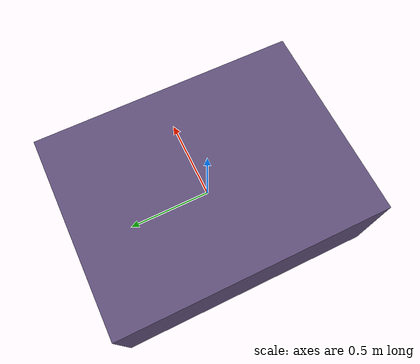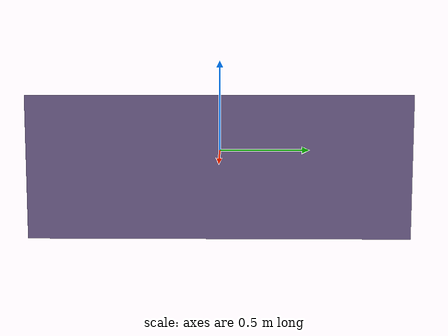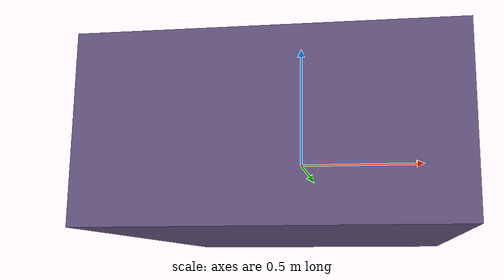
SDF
<?xml version="1.0"?>
<sdf version="1.9">
  <model name="recovery_blocker">
    <static>true</static>
    <link name="blocker_link">
      <collision name="blocker_collision">
        <geometry>
          <box>
            <size>1.20 1.60 0.60</size>
          </box>
        </geometry>
      </collision>
      <visual name="blocker_visual">
        <geometry>
          <box>
            <size>1.20 1.60 0.60</size>
          </box>
        </geometry>
        <material>
          <ambient>0.20 0.18 0.24 1</ambient>
          <diffuse>0.36 0.30 0.46 1</diffuse>
          <specular>0.05 0.05 0.05 1</specular>
        </material>
      </visual>
    </link>
  </model>
</sdf>
